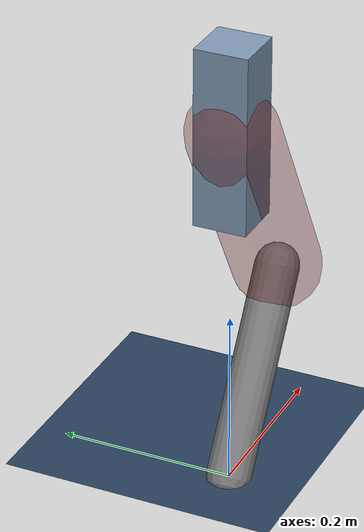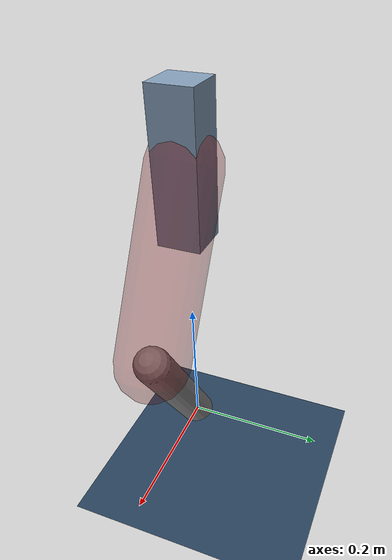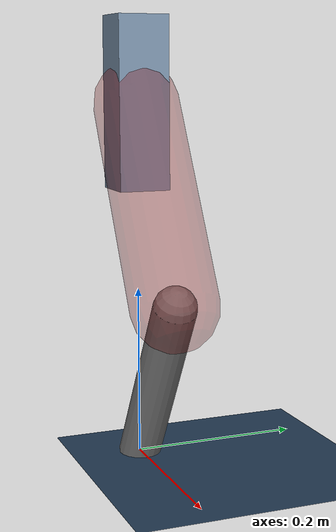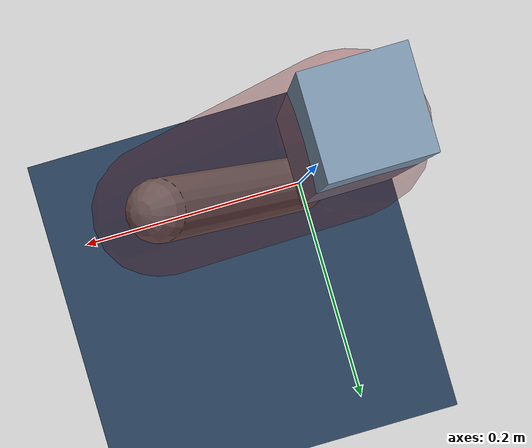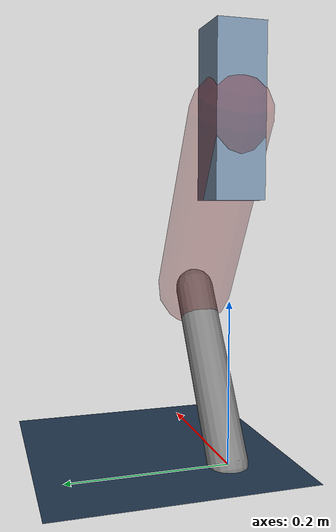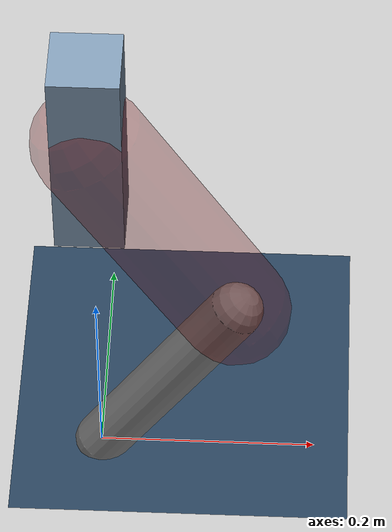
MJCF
<mujoco model="Hopper2D">
	<compiler inertiafromgeom="true" angle="radian" />
	<option timestep="0.001" integrator="implicit" cone="elliptic" solver="Newton" tolerance="1e-10" />

	<default>
		<geom contype="1" conaffinity="1" condim="3" friction="2 0.005 0.0001" solref="0.005 1" />
		<joint limited="true" damping="0.1" />
	</default>

	<asset>
		<texture name="skybox" type="skybox" builtin="gradient" rgb1=".4 .6 .8" rgb2="0 0 0" width="800" height="800" />
		<texture name="grid" type="2d" builtin="checker" rgb1=".1 .2 .3" rgb2=".2 .3 .4" width="300" height="300" mark="edge" markrgb=".2 .3 .4" />
		<material name="ground" texture="grid" texrepeat="1 1" texuniform="true" reflectance="0.1" />
		<material name="leg" rgba="0.5 0.6 0.7 1" />
	</asset>

	<worldbody>

		<geom name="floor" type="plane" size="5 5 0.25" material="ground" />

		<light directional="false" diffuse="0.8 0.8 0.8" specular="0.3 0.3 0.3" pos="0 0 2" dir="0 0 -1" />
		<light mode="targetbodycom" target="base" directional="false" diffuse="0.8 0.8 0.8" specular="0.3 0.3 0.3" pos="0 0 2" dir="0 0 -1" />

		<camera name="fixed" pos="0 -2 1" xyaxes="1 0 0 0 0 1" />
		<camera name="tracking" mode="trackcom" pos="0 -3 1" />

		<body name="root" pos="0 0 0.42030968329682694">
			<joint name="slide_x" type="slide" axis="1 0 0" range="-100 100" />
			<joint name="slide_z" type="slide" axis="0 0 1" range="0 10" />

			<body name="base" pos="0 0 0">
				<geom name="torso" type="box" size="0.03 0.03 0.1" mass="2.231" material="leg" />

				<body name="link1" pos="0 0 0" euler="0 1.0507751130923202 0">
					<joint type="hinge" axis="0 -1 0" pos="0 0 0" name="hinge1" limited="true" range="-3.14 3.14" stiffness="0" damping="0.1" />
					<geom name="thigh" type="capsule" fromto="0 0 0 0.2514311971322537 0 0" size="0.05" rgba="0.5 0 0 0.3" mass="0.8601211125438596" />

					<body name="link2" pos="0.2514311971322537 0 0" euler="0 1.0736726735833706 0">
						<joint type="hinge" axis="0 -1 0" pos="0 0 0" name="hinge2" limited="true" range="-3.14 3.14" stiffness="0" damping="0.1" />
						<geom name="shank" type="capsule" fromto="0 0 0 0.23761236508024575 0 0" size="0.025" mass="0.4322898920641966" />

					</body>
				</body>
			</body>
		</body>
	</worldbody>

	<actuator>
		<motor name="torque1" joint="hinge1" ctrlrange="-57.049884049266176 57.049884049266176" ctrllimited="true" gear="1" />
		<motor name="torque2" joint="hinge2" ctrlrange="-23.975363746964327 23.975363746964327" ctrllimited="true" gear="1" />
	</actuator>
</mujoco>
